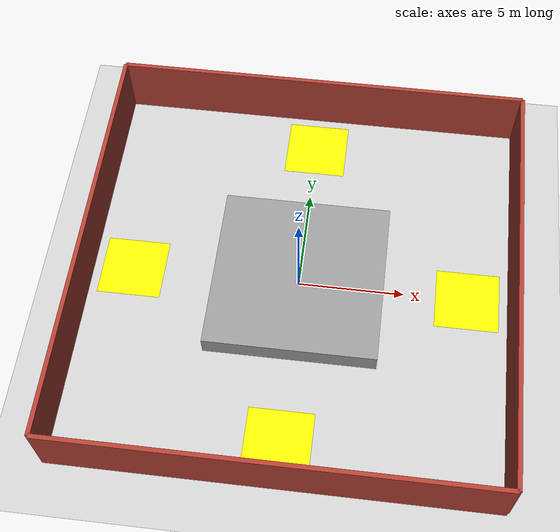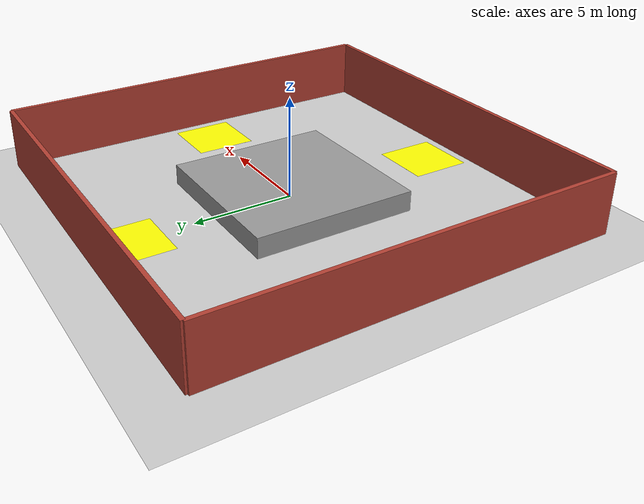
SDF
<?xml version="1.0" ?>
<sdf version='1.10'>
  <world name='empty'>
    <physics name='1ms' type='ignored'>
      <max_step_size>0.001</max_step_size>
      <real_time_factor>1</real_time_factor>
      <real_time_update_rate>1000</real_time_update_rate>
    </physics>
    <plugin name='gz::sim::systems::Physics' filename='gz-sim-physics-system'/>
    <plugin name='gz::sim::systems::UserCommands' filename='gz-sim-user-commands-system'/>
    <plugin name='gz::sim::systems::SceneBroadcaster' filename='gz-sim-scene-broadcaster-system'/>
    <plugin name='gz::sim::systems::Contact' filename='gz-sim-contact-system'/>
    <gravity>0 0 -9.8000000000000007</gravity>
    <magnetic_field>5.5644999999999998e-06 2.2875799999999999e-05 -4.2388400000000002e-05</magnetic_field>
    <atmosphere type='adiabatic'/>
    <scene>
      <ambient>0.400000006 0.400000006 0.400000006 1</ambient>
      <background>0.699999988 0.699999988 0.699999988 1</background>
      <shadows>true</shadows>
    </scene>

    <model name='ground_plane'>
      <static>true</static>
      <link name='link'>
        <collision name='collision'>
          <geometry>
            <plane>
              <normal>0 0 1</normal>
              <size>100 100</size>
            </plane>
          </geometry>
          <surface>
            <friction>
              <ode/>
            </friction>
            <bounce/>
            <contact/>
          </surface>
        </collision>
        <visual name='visual'>
          <geometry>
            <plane>
              <normal>0 0 1</normal>
              <size>100 100</size>
            </plane>
          </geometry>
          <material>
            <ambient>0.800000012 0.800000012 0.800000012 1</ambient>
            <diffuse>0.800000012 0.800000012 0.800000012 1</diffuse>
            <specular>0.800000012 0.800000012 0.800000012 1</specular>
          </material>
        </visual>
        <pose>0 0 0 0 0 0</pose>
        <inertial>
          <pose>0 0 0 0 0 0</pose>
          <mass>1</mass>
          <inertia>
            <ixx>1</ixx>
            <ixy>0</ixy>
            <ixz>0</ixz>
            <iyy>1</iyy>
            <iyz>0</iyz>
            <izz>1</izz>
          </inertia>
        </inertial>
        <enable_wind>false</enable_wind>
      </link>
      <pose>0 0 0 0 0 0</pose>
      <self_collide>false</self_collide>
    </model>

    <!--FACTORY WALLS-->
    <model name="wall_front">
      <static>true</static>
      <pose>0 10 1.5 0 0 0</pose>
      <link name="link">
        <collision name="c"><geometry><box><size>20 0.2 3.0</size></box></geometry></collision>
        <visual name="v">
          <geometry><box><size>20 0.2 3.0</size></box></geometry>
          <material><ambient>0.60 0.20 0.20 1</ambient><diffuse>0.70 0.25 0.20 1</diffuse><specular>0.02 0.02 0.02 1</specular><pbr><metal><metalness>0.0</metalness><roughness>0.85</roughness></metal></pbr></material>
        </visual>
      </link>
    </model>

    <model name="wall_back">
      <static>true</static>
      <pose>0 -10 1.5 0 0 0</pose>
      <link name="link">
        <collision name="c"><geometry><box><size>20 0.2 3.0</size></box></geometry></collision>
        <visual name="v">
          <geometry><box><size>20 0.2 3.0</size></box></geometry>
          <material><ambient>0.60 0.20 0.20 1</ambient><diffuse>0.70 0.25 0.20 1</diffuse><specular>0.02 0.02 0.02 1</specular><pbr><metal><metalness>0.0</metalness><roughness>0.85</roughness></metal></pbr></material>
        </visual>
      </link>
    </model>

    <model name="wall_left">
      <static>true</static>
      <pose>-10 0 1.5 0 0 0</pose>
      <link name="link">
        <collision name="c"><geometry><box><size>0.2 20 3.0</size></box></geometry></collision>
        <visual name="v">
          <geometry><box><size>0.2 20 3.0</size></box></geometry>
          <material><ambient>0.60 0.20 0.20 1</ambient><diffuse>0.70 0.25 0.20 1</diffuse><specular>0.02 0.02 0.02 1</specular><pbr><metal><metalness>0.0</metalness><roughness>0.85</roughness></metal></pbr></material>
        </visual>
      </link>
    </model>

    <model name="wall_right">
      <static>true</static>
      <pose>10 0 1.5 0 0 0</pose>
      <link name="link">
        <collision name="c"><geometry><box><size>0.2 20 3.0</size></box></geometry></collision>
        <visual name="v">
          <geometry><box><size>0.2 20 3.0</size></box></geometry>
          <material><ambient>0.60 0.20 0.20 1</ambient><diffuse>0.70 0.25 0.20 1</diffuse><specular>0.02 0.02 0.02 1</specular><pbr><metal><metalness>0.0</metalness><roughness>0.85</roughness></metal></pbr></material>
        </visual>
      </link>
    </model>

    <!-- coil collection -->
    <model name="coil_collection">
      <static>true</static>
      <pose>-8 0 0.002 0 0 0</pose>
      <link name="link">
        <visual name="square_fill">
          <geometry><box><size>3.0 3.0 0.0001</size></box></geometry>
          <material><ambient>1.0 0.9 0.0 1</ambient><diffuse>1.0 1.0 0.0 1</diffuse></material>
        </visual>
      </link>
    </model>

    <!--Trimming Station-->
    <model name="trimming_station">
      <static>true</static>
      <pose>0.0 8.0 0.002 0 0 0</pose>
      <link name="link">
        <visual name="square_fill">
          <geometry><box><size>3.0 3.0 0.0001</size></box></geometry>
          <material><ambient>1.0 0.9 0.0 1</ambient><diffuse>1.0 1.0 0.0 1</diffuse></material>
        </visual>
      </link>
    </model>

    <!--Unloading Station-->
    <model name="coil_unloading">
      <static>true</static>
      <pose>0.0 -8 0.002 0 0 0</pose>
      <link name="link">
        <visual name="square_fill">
          <geometry><box><size>3.0 3.0 0.0001</size></box></geometry>
          <material><ambient>1.0 0.9 0.0 1</ambient><diffuse> 1.0 1.0 0.0 1</diffuse></material>
        </visual>
      </link>
    </model>

    <!--Compacting Station-->
    <model name="compacting_station">
      <static>true</static>
      <pose>8.0 0.0 0.002 0 0 0</pose>
      <link name="link">
        <visual name="square_fill">
          <geometry><box><size>3.0 3.0 0.0001</size></box></geometry>
          <material><ambient>1.0 0.9 0.0 1</ambient><diffuse>1.0 1.0 0.0 1</diffuse></material>
        </visual>
      </link>
    </model>

    <!--Startup perspective and engine -->
    <gui fullscreen="0">
      <plugin filename="GzScene3D" name="3D View">
        <engine>ogre2</engine>
        <camera_pose>0 0 25   0 1.57 1.57</camera_pose>
      </plugin>
    </gui>

    <!--MIDDLE OBSTACLE-->
    <model name="obstacle_box_x6m">
      <static>true</static>
      <pose>0 0 0.5 0 0 0</pose>
      <link name="link">
        <collision name="col">
          <geometry><box><size>8.0 8.0 1</size></box></geometry>
          <surface><contact/><friction/></surface>
        </collision>
        <visual name="vis">
          <geometry><box><size>8.0 8.0 1</size></box></geometry>
          <material>
            <ambient>0.5 0.5 0.5 1</ambient>
            <diffuse>0.6 0.6 0.6 1</diffuse>
            <specular>0.02 0.02 0.02 1</specular>
          </material>
        </visual>
      </link>
    </model>

    <light name='sun' type='directional'>
      <pose>0 0 10 0 0 0</pose>
      <cast_shadows>true</cast_shadows>
      <intensity>1</intensity>
      <direction>-0.5 0.10000000000000001 -0.90000000000000002</direction>
      <diffuse>0.800000012 0.800000012 0.800000012 1</diffuse>
      <specular>0.200000003 0.200000003 0.200000003 1</specular>
      <attenuation>
        <range>1000</range>
        <linear>0.01</linear>
        <constant>0.90000000000000002</constant>
        <quadratic>0.001</quadratic>
      </attenuation>
      <spot>
        <inner_angle>0</inner_angle>
        <outer_angle>0</outer_angle>
        <falloff>0</falloff>
      </spot>
    </light>
  </world>
</sdf>
